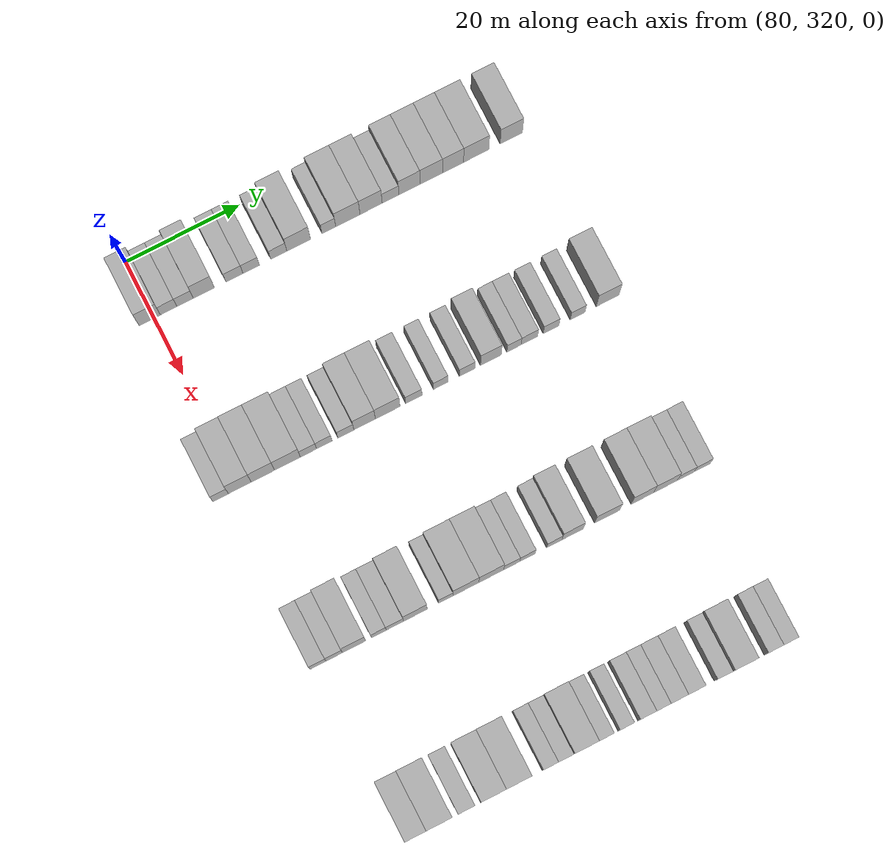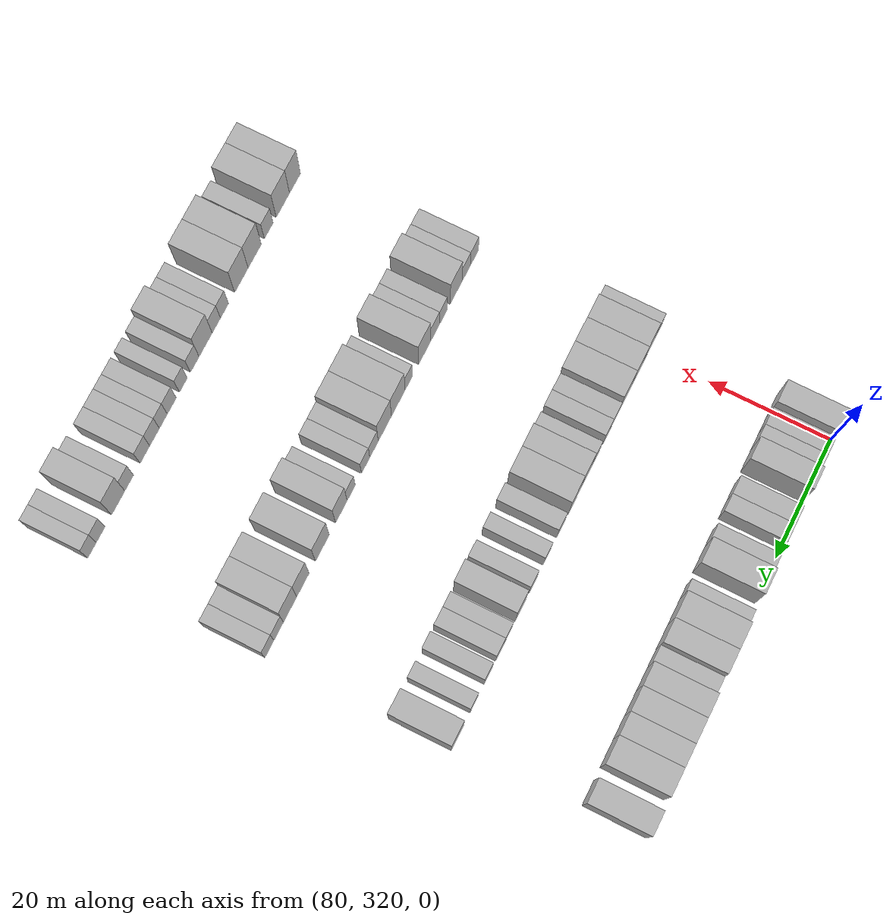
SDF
<sdf version="1.6">
 <world name="default">
  <model name="building_636">
   <static>1</static>
   <pose>85.0000 319.2625 0 0.000000 0.000000 0.000000</pose>
   <link name="link">
    <pose>0 0 4.50 0 0 0</pose>
    <collision name="collision"><geometry><box><size>10.0000 3.7058 9.0000</size></box></geometry></collision>
    <visual name="visual">
     <cast_shadows>0</cast_shadows>
     <geometry><box><size>10.0000 3.7058 9.0000</size></box></geometry>
     <material>
      <script>
       <uri>model://HANNAS_wall/materials/scripts</uri>
       <uri>model://HANNAS_wall/materials/textures</uri>
       <name>vrc/HANNAS_wall</name>
      </script>
     </material>
    </visual>
   </link>
  </model>
  <model name="building_637">
   <static>1</static>
   <pose>85.0000 322.5558 0 0.000000 0.000000 0.000000</pose>
   <link name="link">
    <pose>0 0 3.00 0 0 0</pose>
    <collision name="collision"><geometry><box><size>10.0000 2.8810 6.0000</size></box></geometry></collision>
    <visual name="visual">
     <cast_shadows>0</cast_shadows>
     <geometry><box><size>10.0000 2.8810 6.0000</size></box></geometry>
     <material>
      <script>
       <uri>model://HANNAS_wall/materials/scripts</uri>
       <uri>model://HANNAS_wall/materials/textures</uri>
       <name>vrc/HANNAS_wall</name>
      </script>
     </material>
    </visual>
   </link>
  </model>
  <model name="building_638">
   <static>1</static>
   <pose>85.0000 325.4326 0 0.000000 0.000000 0.000000</pose>
   <link name="link">
    <pose>0 0 3.00 0 0 0</pose>
    <collision name="collision"><geometry><box><size>10.0000 2.8725 6.0000</size></box></geometry></collision>
    <visual name="visual">
     <cast_shadows>0</cast_shadows>
     <geometry><box><size>10.0000 2.8725 6.0000</size></box></geometry>
     <material>
      <script>
       <uri>model://HANNAS_wall/materials/scripts</uri>
       <uri>model://HANNAS_wall/materials/textures</uri>
       <name>vrc/HANNAS_wall</name>
      </script>
     </material>
    </visual>
   </link>
  </model>
  <model name="building_639">
   <static>1</static>
   <pose>85.0000 328.7091 0 0.000000 0.000000 0.000000</pose>
   <link name="link">
    <pose>0 0 4.50 0 0 0</pose>
    <collision name="collision"><geometry><box><size>10.0000 3.6806 9.0000</size></box></geometry></collision>
    <visual name="visual">
     <cast_shadows>0</cast_shadows>
     <geometry><box><size>10.0000 3.6806 9.0000</size></box></geometry>
     <material>
      <script>
       <uri>model://HANNAS_wall/materials/scripts</uri>
       <uri>model://HANNAS_wall/materials/textures</uri>
       <name>vrc/HANNAS_wall</name>
      </script>
     </material>
    </visual>
   </link>
  </model>
  <model name="building_640">
   <static>1</static>
   <pose>85.0000 334.0440 0 0.000000 0.000000 0.000000</pose>
   <link name="link">
    <pose>0 0 3.00 0 0 0</pose>
    <collision name="collision"><geometry><box><size>10.0000 2.9892 6.0000</size></box></geometry></collision>
    <visual name="visual">
     <cast_shadows>0</cast_shadows>
     <geometry><box><size>10.0000 2.9892 6.0000</size></box></geometry>
     <material>
      <script>
       <uri>model://HANNAS_wall/materials/scripts</uri>
       <uri>model://HANNAS_wall/materials/textures</uri>
       <name>vrc/HANNAS_wall</name>
      </script>
     </material>
    </visual>
   </link>
  </model>
  <model name="building_641">
   <static>1</static>
   <pose>85.0000 336.9757 0 0.000000 0.000000 0.000000</pose>
   <link name="link">
    <pose>0 0 3.00 0 0 0</pose>
    <collision name="collision"><geometry><box><size>10.0000 2.8741 6.0000</size></box></geometry></collision>
    <visual name="visual">
     <cast_shadows>0</cast_shadows>
     <geometry><box><size>10.0000 2.8741 6.0000</size></box></geometry>
     <material>
      <script>
       <uri>model://HANNAS_wall/materials/scripts</uri>
       <uri>model://HANNAS_wall/materials/textures</uri>
       <name>vrc/HANNAS_wall</name>
      </script>
     </material>
    </visual>
   </link>
  </model>
  <model name="building_642">
   <static>1</static>
   <pose>85.0000 341.8281 0 0.000000 0.000000 0.000000</pose>
   <link name="link">
    <pose>0 0 3.00 0 0 0</pose>
    <collision name="collision"><geometry><box><size>10.0000 2.8306 6.0000</size></box></geometry></collision>
    <visual name="visual">
     <cast_shadows>0</cast_shadows>
     <geometry><box><size>10.0000 2.8306 6.0000</size></box></geometry>
     <material>
      <script>
       <uri>model://HANNAS_wall/materials/scripts</uri>
       <uri>model://HANNAS_wall/materials/textures</uri>
       <name>vrc/HANNAS_wall</name>
      </script>
     </material>
    </visual>
   </link>
  </model>
  <model name="building_643">
   <static>1</static>
   <pose>85.0000 345.3200 0 0.000000 0.000000 0.000000</pose>
   <link name="link">
    <pose>0 0 4.50 0 0 0</pose>
    <collision name="collision"><geometry><box><size>10.0000 4.1533 9.0000</size></box></geometry></collision>
    <visual name="visual">
     <cast_shadows>0</cast_shadows>
     <geometry><box><size>10.0000 4.1533 9.0000</size></box></geometry>
     <material>
      <script>
       <uri>model://HANNAS_wall/materials/scripts</uri>
       <uri>model://HANNAS_wall/materials/textures</uri>
       <name>vrc/HANNAS_wall</name>
      </script>
     </material>
    </visual>
   </link>
  </model>
  <model name="building_644">
   <static>1</static>
   <pose>85.0000 350.6102 0 0.000000 0.000000 0.000000</pose>
   <link name="link">
    <pose>0 0 3.00 0 0 0</pose>
    <collision name="collision"><geometry><box><size>10.0000 2.4271 6.0000</size></box></geometry></collision>
    <visual name="visual">
     <cast_shadows>0</cast_shadows>
     <geometry><box><size>10.0000 2.4271 6.0000</size></box></geometry>
     <material>
      <script>
       <uri>model://HANNAS_wall/materials/scripts</uri>
       <uri>model://HANNAS_wall/materials/textures</uri>
       <name>vrc/HANNAS_wall</name>
      </script>
     </material>
    </visual>
   </link>
  </model>
  <model name="building_645">
   <static>1</static>
   <pose>85.0000 353.9588 0 0.000000 0.000000 0.000000</pose>
   <link name="link">
    <pose>0 0 4.50 0 0 0</pose>
    <collision name="collision"><geometry><box><size>10.0000 4.2700 9.0000</size></box></geometry></collision>
    <visual name="visual">
     <cast_shadows>0</cast_shadows>
     <geometry><box><size>10.0000 4.2700 9.0000</size></box></geometry>
     <material>
      <script>
       <uri>model://HANNAS_wall/materials/scripts</uri>
       <uri>model://HANNAS_wall/materials/textures</uri>
       <name>vrc/HANNAS_wall</name>
      </script>
     </material>
    </visual>
   </link>
  </model>
  <model name="building_646">
   <static>1</static>
   <pose>85.0000 358.0466 0 0.000000 0.000000 0.000000</pose>
   <link name="link">
    <pose>0 0 4.50 0 0 0</pose>
    <collision name="collision"><geometry><box><size>10.0000 3.9058 9.0000</size></box></geometry></collision>
    <visual name="visual">
     <cast_shadows>0</cast_shadows>
     <geometry><box><size>10.0000 3.9058 9.0000</size></box></geometry>
     <material>
      <script>
       <uri>model://HANNAS_wall/materials/scripts</uri>
       <uri>model://HANNAS_wall/materials/textures</uri>
       <name>vrc/HANNAS_wall</name>
      </script>
     </material>
    </visual>
   </link>
  </model>
  <model name="building_647">
   <static>1</static>
   <pose>85.0000 361.4783 0 0.000000 0.000000 0.000000</pose>
   <link name="link">
    <pose>0 0 3.00 0 0 0</pose>
    <collision name="collision"><geometry><box><size>10.0000 2.9574 6.0000</size></box></geometry></collision>
    <visual name="visual">
     <cast_shadows>0</cast_shadows>
     <geometry><box><size>10.0000 2.9574 6.0000</size></box></geometry>
     <material>
      <script>
       <uri>model://HANNAS_wall/materials/scripts</uri>
       <uri>model://HANNAS_wall/materials/textures</uri>
       <name>vrc/HANNAS_wall</name>
      </script>
     </material>
    </visual>
   </link>
  </model>
  <model name="building_648">
   <static>1</static>
   <pose>85.0000 364.8378 0 0.000000 0.000000 0.000000</pose>
   <link name="link">
    <pose>0 0 4.50 0 0 0</pose>
    <collision name="collision"><geometry><box><size>10.0000 3.7616 9.0000</size></box></geometry></collision>
    <visual name="visual">
     <cast_shadows>0</cast_shadows>
     <geometry><box><size>10.0000 3.7616 9.0000</size></box></geometry>
     <material>
      <script>
       <uri>model://HANNAS_wall/materials/scripts</uri>
       <uri>model://HANNAS_wall/materials/textures</uri>
       <name>vrc/HANNAS_wall</name>
      </script>
     </material>
    </visual>
   </link>
  </model>
  <model name="building_649">
   <static>1</static>
   <pose>85.0000 368.7100 0 0.000000 0.000000 0.000000</pose>
   <link name="link">
    <pose>0 0 4.50 0 0 0</pose>
    <collision name="collision"><geometry><box><size>10.0000 3.9829 9.0000</size></box></geometry></collision>
    <visual name="visual">
     <cast_shadows>0</cast_shadows>
     <geometry><box><size>10.0000 3.9829 9.0000</size></box></geometry>
     <material>
      <script>
       <uri>model://HANNAS_wall/materials/scripts</uri>
       <uri>model://HANNAS_wall/materials/textures</uri>
       <name>vrc/HANNAS_wall</name>
      </script>
     </material>
    </visual>
   </link>
  </model>
  <model name="building_650">
   <static>1</static>
   <pose>85.0000 372.5409 0 0.000000 0.000000 0.000000</pose>
   <link name="link">
    <pose>0 0 4.50 0 0 0</pose>
    <collision name="collision"><geometry><box><size>10.0000 3.6788 9.0000</size></box></geometry></collision>
    <visual name="visual">
     <cast_shadows>0</cast_shadows>
     <geometry><box><size>10.0000 3.6788 9.0000</size></box></geometry>
     <material>
      <script>
       <uri>model://HANNAS_wall/materials/scripts</uri>
       <uri>model://HANNAS_wall/materials/textures</uri>
       <name>vrc/HANNAS_wall</name>
      </script>
     </material>
    </visual>
   </link>
  </model>
  <model name="building_651">
   <static>1</static>
   <pose>85.0000 376.6159 0 0.000000 0.000000 0.000000</pose>
   <link name="link">
    <pose>0 0 4.50 0 0 0</pose>
    <collision name="collision"><geometry><box><size>10.0000 4.4713 9.0000</size></box></geometry></collision>
    <visual name="visual">
     <cast_shadows>0</cast_shadows>
     <geometry><box><size>10.0000 4.4713 9.0000</size></box></geometry>
     <material>
      <script>
       <uri>model://HANNAS_wall/materials/scripts</uri>
       <uri>model://HANNAS_wall/materials/textures</uri>
       <name>vrc/HANNAS_wall</name>
      </script>
     </material>
    </visual>
   </link>
  </model>
  <model name="building_652">
   <static>1</static>
   <pose>85.0000 382.8207 0 0.000000 0.000000 0.000000</pose>
   <link name="link">
    <pose>0 0 4.50 0 0 0</pose>
    <collision name="collision"><geometry><box><size>10.0000 3.9382 9.0000</size></box></geometry></collision>
    <visual name="visual">
     <cast_shadows>0</cast_shadows>
     <geometry><box><size>10.0000 3.9382 9.0000</size></box></geometry>
     <material>
      <script>
       <uri>model://HANNAS_wall/materials/scripts</uri>
       <uri>model://HANNAS_wall/materials/textures</uri>
       <name>vrc/HANNAS_wall</name>
      </script>
     </material>
    </visual>
   </link>
  </model>
  <model name="building_861">
   <static>1</static>
   <pose>115.0000 316.6070 0 0.000000 0.000000 0.000000</pose>
   <link name="link">
    <pose>0 0 3.00 0 0 0</pose>
    <collision name="collision"><geometry><box><size>10.0000 2.6922 6.0000</size></box></geometry></collision>
    <visual name="visual">
     <cast_shadows>0</cast_shadows>
     <geometry><box><size>10.0000 2.6922 6.0000</size></box></geometry>
     <material>
      <script>
       <uri>model://HANNAS_wall/materials/scripts</uri>
       <uri>model://HANNAS_wall/materials/textures</uri>
       <name>vrc/HANNAS_wall</name>
      </script>
     </material>
    </visual>
   </link>
  </model>
  <model name="building_862">
   <static>1</static>
   <pose>115.0000 319.9297 0 0.000000 0.000000 0.000000</pose>
   <link name="link">
    <pose>0 0 4.50 0 0 0</pose>
    <collision name="collision"><geometry><box><size>10.0000 3.9531 9.0000</size></box></geometry></collision>
    <visual name="visual">
     <cast_shadows>0</cast_shadows>
     <geometry><box><size>10.0000 3.9531 9.0000</size></box></geometry>
     <material>
      <script>
       <uri>model://HANNAS_wall/materials/scripts</uri>
       <uri>model://HANNAS_wall/materials/textures</uri>
       <name>vrc/HANNAS_wall</name>
      </script>
     </material>
    </visual>
   </link>
  </model>
  <model name="building_863">
   <static>1</static>
   <pose>115.0000 323.9288 0 0.000000 0.000000 0.000000</pose>
   <link name="link">
    <pose>0 0 4.50 0 0 0</pose>
    <collision name="collision"><geometry><box><size>10.0000 4.0452 9.0000</size></box></geometry></collision>
    <visual name="visual">
     <cast_shadows>0</cast_shadows>
     <geometry><box><size>10.0000 4.0452 9.0000</size></box></geometry>
     <material>
      <script>
       <uri>model://HANNAS_wall/materials/scripts</uri>
       <uri>model://HANNAS_wall/materials/textures</uri>
       <name>vrc/HANNAS_wall</name>
      </script>
     </material>
    </visual>
   </link>
  </model>
  <model name="building_864">
   <static>1</static>
   <pose>115.0000 328.1894 0 0.000000 0.000000 0.000000</pose>
   <link name="link">
    <pose>0 0 4.50 0 0 0</pose>
    <collision name="collision"><geometry><box><size>10.0000 4.4760 9.0000</size></box></geometry></collision>
    <visual name="visual">
     <cast_shadows>0</cast_shadows>
     <geometry><box><size>10.0000 4.4760 9.0000</size></box></geometry>
     <material>
      <script>
       <uri>model://HANNAS_wall/materials/scripts</uri>
       <uri>model://HANNAS_wall/materials/textures</uri>
       <name>vrc/HANNAS_wall</name>
      </script>
     </material>
    </visual>
   </link>
  </model>
  <model name="building_865">
   <static>1</static>
   <pose>115.0000 331.8304 0 0.000000 0.000000 0.000000</pose>
   <link name="link">
    <pose>0 0 3.00 0 0 0</pose>
    <collision name="collision"><geometry><box><size>10.0000 2.8059 6.0000</size></box></geometry></collision>
    <visual name="visual">
     <cast_shadows>0</cast_shadows>
     <geometry><box><size>10.0000 2.8059 6.0000</size></box></geometry>
     <material>
      <script>
       <uri>model://HANNAS_wall/materials/scripts</uri>
       <uri>model://HANNAS_wall/materials/textures</uri>
       <name>vrc/HANNAS_wall</name>
      </script>
     </material>
    </visual>
   </link>
  </model>
  <model name="building_866">
   <static>1</static>
   <pose>115.0000 334.5945 0 0.000000 0.000000 0.000000</pose>
   <link name="link">
    <pose>0 0 3.00 0 0 0</pose>
    <collision name="collision"><geometry><box><size>10.0000 2.7223 6.0000</size></box></geometry></collision>
    <visual name="visual">
     <cast_shadows>0</cast_shadows>
     <geometry><box><size>10.0000 2.7223 6.0000</size></box></geometry>
     <material>
      <script>
       <uri>model://HANNAS_wall/materials/scripts</uri>
       <uri>model://HANNAS_wall/materials/textures</uri>
       <name>vrc/HANNAS_wall</name>
      </script>
     </material>
    </visual>
   </link>
  </model>
  <model name="building_867">
   <static>1</static>
   <pose>115.0000 338.3423 0 0.000000 0.000000 0.000000</pose>
   <link name="link">
    <pose>0 0 3.00 0 0 0</pose>
    <collision name="collision"><geometry><box><size>10.0000 2.7733 6.0000</size></box></geometry></collision>
    <visual name="visual">
     <cast_shadows>0</cast_shadows>
     <geometry><box><size>10.0000 2.7733 6.0000</size></box></geometry>
     <material>
      <script>
       <uri>model://HANNAS_wall/materials/scripts</uri>
       <uri>model://HANNAS_wall/materials/textures</uri>
       <name>vrc/HANNAS_wall</name>
      </script>
     </material>
    </visual>
   </link>
  </model>
  <model name="building_868">
   <static>1</static>
   <pose>115.0000 341.6054 0 0.000000 0.000000 0.000000</pose>
   <link name="link">
    <pose>0 0 4.50 0 0 0</pose>
    <collision name="collision"><geometry><box><size>10.0000 3.7530 9.0000</size></box></geometry></collision>
    <visual name="visual">
     <cast_shadows>0</cast_shadows>
     <geometry><box><size>10.0000 3.7530 9.0000</size></box></geometry>
     <material>
      <script>
       <uri>model://HANNAS_wall/materials/scripts</uri>
       <uri>model://HANNAS_wall/materials/textures</uri>
       <name>vrc/HANNAS_wall</name>
      </script>
     </material>
    </visual>
   </link>
  </model>
  <model name="building_869">
   <static>1</static>
   <pose>115.0000 345.6247 0 0.000000 0.000000 0.000000</pose>
   <link name="link">
    <pose>0 0 4.50 0 0 0</pose>
    <collision name="collision"><geometry><box><size>10.0000 4.2855 9.0000</size></box></geometry></collision>
    <visual name="visual">
     <cast_shadows>0</cast_shadows>
     <geometry><box><size>10.0000 4.2855 9.0000</size></box></geometry>
     <material>
      <script>
       <uri>model://HANNAS_wall/materials/scripts</uri>
       <uri>model://HANNAS_wall/materials/textures</uri>
       <name>vrc/HANNAS_wall</name>
      </script>
     </material>
    </visual>
   </link>
  </model>
  <model name="building_870">
   <static>1</static>
   <pose>115.0000 350.1934 0 0.000000 0.000000 0.000000</pose>
   <link name="link">
    <pose>0 0 3.00 0 0 0</pose>
    <collision name="collision"><geometry><box><size>10.0000 2.8519 6.0000</size></box></geometry></collision>
    <visual name="visual">
     <cast_shadows>0</cast_shadows>
     <geometry><box><size>10.0000 2.8519 6.0000</size></box></geometry>
     <material>
      <script>
       <uri>model://HANNAS_wall/materials/scripts</uri>
       <uri>model://HANNAS_wall/materials/textures</uri>
       <name>vrc/HANNAS_wall</name>
      </script>
     </material>
    </visual>
   </link>
  </model>
  <model name="building_871">
   <static>1</static>
   <pose>115.0000 354.8869 0 0.000000 0.000000 0.000000</pose>
   <link name="link">
    <pose>0 0 3.00 0 0 0</pose>
    <collision name="collision"><geometry><box><size>10.0000 2.5351 6.0000</size></box></geometry></collision>
    <visual name="visual">
     <cast_shadows>0</cast_shadows>
     <geometry><box><size>10.0000 2.5351 6.0000</size></box></geometry>
     <material>
      <script>
       <uri>model://HANNAS_wall/materials/scripts</uri>
       <uri>model://HANNAS_wall/materials/textures</uri>
       <name>vrc/HANNAS_wall</name>
      </script>
     </material>
    </visual>
   </link>
  </model>
  <model name="building_872">
   <static>1</static>
   <pose>115.0000 359.5043 0 0.000000 0.000000 0.000000</pose>
   <link name="link">
    <pose>0 0 3.00 0 0 0</pose>
    <collision name="collision"><geometry><box><size>10.0000 2.6997 6.0000</size></box></geometry></collision>
    <visual name="visual">
     <cast_shadows>0</cast_shadows>
     <geometry><box><size>10.0000 2.6997 6.0000</size></box></geometry>
     <material>
      <script>
       <uri>model://HANNAS_wall/materials/scripts</uri>
       <uri>model://HANNAS_wall/materials/textures</uri>
       <name>vrc/HANNAS_wall</name>
      </script>
     </material>
    </visual>
   </link>
  </model>
  <model name="building_873">
   <static>1</static>
   <pose>115.0000 363.6675 0 0.000000 0.000000 0.000000</pose>
   <link name="link">
    <pose>0 0 4.50 0 0 0</pose>
    <collision name="collision"><geometry><box><size>10.0000 3.6268 9.0000</size></box></geometry></collision>
    <visual name="visual">
     <cast_shadows>0</cast_shadows>
     <geometry><box><size>10.0000 3.6268 9.0000</size></box></geometry>
     <material>
      <script>
       <uri>model://HANNAS_wall/materials/scripts</uri>
       <uri>model://HANNAS_wall/materials/textures</uri>
       <name>vrc/HANNAS_wall</name>
      </script>
     </material>
    </visual>
   </link>
  </model>
  <model name="building_874">
   <static>1</static>
   <pose>115.0000 367.7287 0 0.000000 0.000000 0.000000</pose>
   <link name="link">
    <pose>0 0 3.00 0 0 0</pose>
    <collision name="collision"><geometry><box><size>10.0000 2.4957 6.0000</size></box></geometry></collision>
    <visual name="visual">
     <cast_shadows>0</cast_shadows>
     <geometry><box><size>10.0000 2.4957 6.0000</size></box></geometry>
     <material>
      <script>
       <uri>model://HANNAS_wall/materials/scripts</uri>
       <uri>model://HANNAS_wall/materials/textures</uri>
       <name>vrc/HANNAS_wall</name>
      </script>
     </material>
    </visual>
   </link>
  </model>
  <model name="building_875">
   <static>1</static>
   <pose>115.0000 370.4249 0 0.000000 0.000000 0.000000</pose>
   <link name="link">
    <pose>0 0 3.00 0 0 0</pose>
    <collision name="collision"><geometry><box><size>10.0000 2.8967 6.0000</size></box></geometry></collision>
    <visual name="visual">
     <cast_shadows>0</cast_shadows>
     <geometry><box><size>10.0000 2.8967 6.0000</size></box></geometry>
     <material>
      <script>
       <uri>model://HANNAS_wall/materials/scripts</uri>
       <uri>model://HANNAS_wall/materials/textures</uri>
       <name>vrc/HANNAS_wall</name>
      </script>
     </material>
    </visual>
   </link>
  </model>
  <model name="building_876">
   <static>1</static>
   <pose>115.0000 374.2405 0 0.000000 0.000000 0.000000</pose>
   <link name="link">
    <pose>0 0 3.00 0 0 0</pose>
    <collision name="collision"><geometry><box><size>10.0000 2.7345 6.0000</size></box></geometry></collision>
    <visual name="visual">
     <cast_shadows>0</cast_shadows>
     <geometry><box><size>10.0000 2.7345 6.0000</size></box></geometry>
     <material>
      <script>
       <uri>model://HANNAS_wall/materials/scripts</uri>
       <uri>model://HANNAS_wall/materials/textures</uri>
       <name>vrc/HANNAS_wall</name>
      </script>
     </material>
    </visual>
   </link>
  </model>
  <model name="building_877">
   <static>1</static>
   <pose>115.0000 378.9052 0 0.000000 0.000000 0.000000</pose>
   <link name="link">
    <pose>0 0 3.00 0 0 0</pose>
    <collision name="collision"><geometry><box><size>10.0000 2.5949 6.0000</size></box></geometry></collision>
    <visual name="visual">
     <cast_shadows>0</cast_shadows>
     <geometry><box><size>10.0000 2.5949 6.0000</size></box></geometry>
     <material>
      <script>
       <uri>model://HANNAS_wall/materials/scripts</uri>
       <uri>model://HANNAS_wall/materials/textures</uri>
       <name>vrc/HANNAS_wall</name>
      </script>
     </material>
    </visual>
   </link>
  </model>
  <model name="building_878">
   <static>1</static>
   <pose>115.0000 384.2027 0 0.000000 0.000000 0.000000</pose>
   <link name="link">
    <pose>0 0 4.50 0 0 0</pose>
    <collision name="collision"><geometry><box><size>10.0000 4.0001 9.0000</size></box></geometry></collision>
    <visual name="visual">
     <cast_shadows>0</cast_shadows>
     <geometry><box><size>10.0000 4.0001 9.0000</size></box></geometry>
     <material>
      <script>
       <uri>model://HANNAS_wall/materials/scripts</uri>
       <uri>model://HANNAS_wall/materials/textures</uri>
       <name>vrc/HANNAS_wall</name>
      </script>
     </material>
    </visual>
   </link>
  </model>
  <model name="building_1096">
   <static>1</static>
   <pose>145.0000 318.2930 0 0.000000 0.000000 0.000000</pose>
   <link name="link">
    <pose>0 0 3.00 0 0 0</pose>
    <collision name="collision"><geometry><box><size>10.0000 2.7541 6.0000</size></box></geometry></collision>
    <visual name="visual">
     <cast_shadows>0</cast_shadows>
     <geometry><box><size>10.0000 2.7541 6.0000</size></box></geometry>
     <material>
      <script>
       <uri>model://HANNAS_wall/materials/scripts</uri>
       <uri>model://HANNAS_wall/materials/textures</uri>
       <name>vrc/HANNAS_wall</name>
      </script>
     </material>
    </visual>
   </link>
  </model>
  <model name="building_1097">
   <static>1</static>
   <pose>145.0000 321.0886 0 0.000000 0.000000 0.000000</pose>
   <link name="link">
    <pose>0 0 3.00 0 0 0</pose>
    <collision name="collision"><geometry><box><size>10.0000 2.8372 6.0000</size></box></geometry></collision>
    <visual name="visual">
     <cast_shadows>0</cast_shadows>
     <geometry><box><size>10.0000 2.8372 6.0000</size></box></geometry>
     <material>
      <script>
       <uri>model://HANNAS_wall/materials/scripts</uri>
       <uri>model://HANNAS_wall/materials/textures</uri>
       <name>vrc/HANNAS_wall</name>
      </script>
     </material>
    </visual>
   </link>
  </model>
  <model name="building_1098">
   <static>1</static>
   <pose>145.0000 324.4993 0 0.000000 0.000000 0.000000</pose>
   <link name="link">
    <pose>0 0 4.50 0 0 0</pose>
    <collision name="collision"><geometry><box><size>10.0000 3.9843 9.0000</size></box></geometry></collision>
    <visual name="visual">
     <cast_shadows>0</cast_shadows>
     <geometry><box><size>10.0000 3.9843 9.0000</size></box></geometry>
     <material>
      <script>
       <uri>model://HANNAS_wall/materials/scripts</uri>
       <uri>model://HANNAS_wall/materials/textures</uri>
       <name>vrc/HANNAS_wall</name>
      </script>
     </material>
    </visual>
   </link>
  </model>
  <model name="building_1099">
   <static>1</static>
   <pose>145.0000 328.7684 0 0.000000 0.000000 0.000000</pose>
   <link name="link">
    <pose>0 0 3.00 0 0 0</pose>
    <collision name="collision"><geometry><box><size>10.0000 2.5539 6.0000</size></box></geometry></collision>
    <visual name="visual">
     <cast_shadows>0</cast_shadows>
     <geometry><box><size>10.0000 2.5539 6.0000</size></box></geometry>
     <material>
      <script>
       <uri>model://HANNAS_wall/materials/scripts</uri>
       <uri>model://HANNAS_wall/materials/textures</uri>
       <name>vrc/HANNAS_wall</name>
      </script>
     </material>
    </visual>
   </link>
  </model>
  <model name="building_1100">
   <static>1</static>
   <pose>145.0000 331.5217 0 0.000000 0.000000 0.000000</pose>
   <link name="link">
    <pose>0 0 3.00 0 0 0</pose>
    <collision name="collision"><geometry><box><size>10.0000 2.9525 6.0000</size></box></geometry></collision>
    <visual name="visual">
     <cast_shadows>0</cast_shadows>
     <geometry><box><size>10.0000 2.9525 6.0000</size></box></geometry>
     <material>
      <script>
       <uri>model://HANNAS_wall/materials/scripts</uri>
       <uri>model://HANNAS_wall/materials/textures</uri>
       <name>vrc/HANNAS_wall</name>
      </script>
     </material>
    </visual>
   </link>
  </model>
  <model name="building_1101">
   <static>1</static>
   <pose>145.0000 335.0516 0 0.000000 0.000000 0.000000</pose>
   <link name="link">
    <pose>0 0 4.50 0 0 0</pose>
    <collision name="collision"><geometry><box><size>10.0000 4.1074 9.0000</size></box></geometry></collision>
    <visual name="visual">
     <cast_shadows>0</cast_shadows>
     <geometry><box><size>10.0000 4.1074 9.0000</size></box></geometry>
     <material>
      <script>
       <uri>model://HANNAS_wall/materials/scripts</uri>
       <uri>model://HANNAS_wall/materials/textures</uri>
       <name>vrc/HANNAS_wall</name>
      </script>
     </material>
    </visual>
   </link>
  </model>
  <model name="building_1102">
   <static>1</static>
   <pose>145.0000 340.3355 0 0.000000 0.000000 0.000000</pose>
   <link name="link">
    <pose>0 0 3.00 0 0 0</pose>
    <collision name="collision"><geometry><box><size>10.0000 2.4604 6.0000</size></box></geometry></collision>
    <visual name="visual">
     <cast_shadows>0</cast_shadows>
     <geometry><box><size>10.0000 2.4604 6.0000</size></box></geometry>
     <material>
      <script>
       <uri>model://HANNAS_wall/materials/scripts</uri>
       <uri>model://HANNAS_wall/materials/textures</uri>
       <name>vrc/HANNAS_wall</name>
      </script>
     </material>
    </visual>
   </link>
  </model>
  <model name="building_1103">
   <static>1</static>
   <pose>145.0000 343.8103 0 0.000000 0.000000 0.000000</pose>
   <link name="link">
    <pose>0 0 4.50 0 0 0</pose>
    <collision name="collision"><geometry><box><size>10.0000 4.4892 9.0000</size></box></geometry></collision>
    <visual name="visual">
     <cast_shadows>0</cast_shadows>
     <geometry><box><size>10.0000 4.4892 9.0000</size></box></geometry>
     <material>
      <script>
       <uri>model://HANNAS_wall/materials/scripts</uri>
       <uri>model://HANNAS_wall/materials/textures</uri>
       <name>vrc/HANNAS_wall</name>
      </script>
     </material>
    </visual>
   </link>
  </model>
  <model name="building_1104">
   <static>1</static>
   <pose>145.0000 348.2109 0 0.000000 0.000000 0.000000</pose>
   <link name="link">
    <pose>0 0 4.50 0 0 0</pose>
    <collision name="collision"><geometry><box><size>10.0000 4.3118 9.0000</size></box></geometry></collision>
    <visual name="visual">
     <cast_shadows>0</cast_shadows>
     <geometry><box><size>10.0000 4.3118 9.0000</size></box></geometry>
     <material>
      <script>
       <uri>model://HANNAS_wall/materials/scripts</uri>
       <uri>model://HANNAS_wall/materials/textures</uri>
       <name>vrc/HANNAS_wall</name>
      </script>
     </material>
    </visual>
   </link>
  </model>
  <model name="building_1105">
   <static>1</static>
   <pose>145.0000 351.7563 0 0.000000 0.000000 0.000000</pose>
   <link name="link">
    <pose>0 0 3.00 0 0 0</pose>
    <collision name="collision"><geometry><box><size>10.0000 2.7791 6.0000</size></box></geometry></collision>
    <visual name="visual">
     <cast_shadows>0</cast_shadows>
     <geometry><box><size>10.0000 2.7791 6.0000</size></box></geometry>
     <material>
      <script>
       <uri>model://HANNAS_wall/materials/scripts</uri>
       <uri>model://HANNAS_wall/materials/textures</uri>
       <name>vrc/HANNAS_wall</name>
      </script>
     </material>
    </visual>
   </link>
  </model>
  <model name="building_1106">
   <static>1</static>
   <pose>145.0000 354.4895 0 0.000000 0.000000 0.000000</pose>
   <link name="link">
    <pose>0 0 3.00 0 0 0</pose>
    <collision name="collision"><geometry><box><size>10.0000 2.6873 6.0000</size></box></geometry></collision>
    <visual name="visual">
     <cast_shadows>0</cast_shadows>
     <geometry><box><size>10.0000 2.6873 6.0000</size></box></geometry>
     <material>
      <script>
       <uri>model://HANNAS_wall/materials/scripts</uri>
       <uri>model://HANNAS_wall/materials/textures</uri>
       <name>vrc/HANNAS_wall</name>
      </script>
     </material>
    </visual>
   </link>
  </model>
  <model name="building_1107">
   <static>1</static>
   <pose>145.0000 359.1466 0 0.000000 0.000000 0.000000</pose>
   <link name="link">
    <pose>0 0 3.00 0 0 0</pose>
    <collision name="collision"><geometry><box><size>10.0000 2.6268 6.0000</size></box></geometry></collision>
    <visual name="visual">
     <cast_shadows>0</cast_shadows>
     <geometry><box><size>10.0000 2.6268 6.0000</size></box></geometry>
     <material>
      <script>
       <uri>model://HANNAS_wall/materials/scripts</uri>
       <uri>model://HANNAS_wall/materials/textures</uri>
       <name>vrc/HANNAS_wall</name>
      </script>
     </material>
    </visual>
   </link>
  </model>
  <model name="building_1108">
   <static>1</static>
   <pose>145.0000 362.3119 0 0.000000 0.000000 0.000000</pose>
   <link name="link">
    <pose>0 0 4.50 0 0 0</pose>
    <collision name="collision"><geometry><box><size>10.0000 3.7039 9.0000</size></box></geometry></collision>
    <visual name="visual">
     <cast_shadows>0</cast_shadows>
     <geometry><box><size>10.0000 3.7039 9.0000</size></box></geometry>
     <material>
      <script>
       <uri>model://HANNAS_wall/materials/scripts</uri>
       <uri>model://HANNAS_wall/materials/textures</uri>
       <name>vrc/HANNAS_wall</name>
      </script>
     </material>
    </visual>
   </link>
  </model>
  <model name="building_1109">
   <static>1</static>
   <pose>145.0000 368.3526 0 0.000000 0.000000 0.000000</pose>
   <link name="link">
    <pose>0 0 4.50 0 0 0</pose>
    <collision name="collision"><geometry><box><size>10.0000 4.3775 9.0000</size></box></geometry></collision>
    <visual name="visual">
     <cast_shadows>0</cast_shadows>
     <geometry><box><size>10.0000 4.3775 9.0000</size></box></geometry>
     <material>
      <script>
       <uri>model://HANNAS_wall/materials/scripts</uri>
       <uri>model://HANNAS_wall/materials/textures</uri>
       <name>vrc/HANNAS_wall</name>
      </script>
     </material>
    </visual>
   </link>
  </model>
  <model name="building_1110">
   <static>1</static>
   <pose>145.0000 374.4978 0 0.000000 0.000000 0.000000</pose>
   <link name="link">
    <pose>0 0 4.50 0 0 0</pose>
    <collision name="collision"><geometry><box><size>10.0000 3.9127 9.0000</size></box></geometry></collision>
    <visual name="visual">
     <cast_shadows>0</cast_shadows>
     <geometry><box><size>10.0000 3.9127 9.0000</size></box></geometry>
     <material>
      <script>
       <uri>model://HANNAS_wall/materials/scripts</uri>
       <uri>model://HANNAS_wall/materials/textures</uri>
       <name>vrc/HANNAS_wall</name>
      </script>
     </material>
    </visual>
   </link>
  </model>
  <model name="building_1111">
   <static>1</static>
   <pose>145.0000 378.5279 0 0.000000 0.000000 0.000000</pose>
   <link name="link">
    <pose>0 0 4.50 0 0 0</pose>
    <collision name="collision"><geometry><box><size>10.0000 4.1476 9.0000</size></box></geometry></collision>
    <visual name="visual">
     <cast_shadows>0</cast_shadows>
     <geometry><box><size>10.0000 4.1476 9.0000</size></box></geometry>
     <material>
      <script>
       <uri>model://HANNAS_wall/materials/scripts</uri>
       <uri>model://HANNAS_wall/materials/textures</uri>
       <name>vrc/HANNAS_wall</name>
      </script>
     </material>
    </visual>
   </link>
  </model>
  <model name="building_1112">
   <static>1</static>
   <pose>145.0000 382.0901 0 0.000000 0.000000 0.000000</pose>
   <link name="link">
    <pose>0 0 3.00 0 0 0</pose>
    <collision name="collision"><geometry><box><size>10.0000 2.9768 6.0000</size></box></geometry></collision>
    <visual name="visual">
     <cast_shadows>0</cast_shadows>
     <geometry><box><size>10.0000 2.9768 6.0000</size></box></geometry>
     <material>
      <script>
       <uri>model://HANNAS_wall/materials/scripts</uri>
       <uri>model://HANNAS_wall/materials/textures</uri>
       <name>vrc/HANNAS_wall</name>
      </script>
     </material>
    </visual>
   </link>
  </model>
  <model name="building_1113">
   <static>1</static>
   <pose>145.0000 384.9736 0 0.000000 0.000000 0.000000</pose>
   <link name="link">
    <pose>0 0 3.00 0 0 0</pose>
    <collision name="collision"><geometry><box><size>10.0000 2.7901 6.0000</size></box></geometry></collision>
    <visual name="visual">
     <cast_shadows>0</cast_shadows>
     <geometry><box><size>10.0000 2.7901 6.0000</size></box></geometry>
     <material>
      <script>
       <uri>model://HANNAS_wall/materials/scripts</uri>
       <uri>model://HANNAS_wall/materials/textures</uri>
       <name>vrc/HANNAS_wall</name>
      </script>
     </material>
    </visual>
   </link>
  </model>
  <model name="building_1325">
   <static>1</static>
   <pose>175.0000 319.7922 0 0.000000 0.000000 0.000000</pose>
   <link name="link">
    <pose>0 0 4.50 0 0 0</pose>
    <collision name="collision"><geometry><box><size>10.0000 3.6180 9.0000</size></box></geometry></collision>
    <visual name="visual">
     <cast_shadows>0</cast_shadows>
     <geometry><box><size>10.0000 3.6180 9.0000</size></box></geometry>
     <material>
      <script>
       <uri>model://HANNAS_wall/materials/scripts</uri>
       <uri>model://HANNAS_wall/materials/textures</uri>
       <name>vrc/HANNAS_wall</name>
      </script>
     </material>
    </visual>
   </link>
  </model>
  <model name="building_1326">
   <static>1</static>
   <pose>175.0000 323.7875 0 0.000000 0.000000 0.000000</pose>
   <link name="link">
    <pose>0 0 4.50 0 0 0</pose>
    <collision name="collision"><geometry><box><size>10.0000 4.3726 9.0000</size></box></geometry></collision>
    <visual name="visual">
     <cast_shadows>0</cast_shadows>
     <geometry><box><size>10.0000 4.3726 9.0000</size></box></geometry>
     <material>
      <script>
       <uri>model://HANNAS_wall/materials/scripts</uri>
       <uri>model://HANNAS_wall/materials/textures</uri>
       <name>vrc/HANNAS_wall</name>
      </script>
     </material>
    </visual>
   </link>
  </model>
  <model name="building_1327">
   <static>1</static>
   <pose>175.0000 328.4044 0 0.000000 0.000000 0.000000</pose>
   <link name="link">
    <pose>0 0 3.00 0 0 0</pose>
    <collision name="collision"><geometry><box><size>10.0000 2.8611 6.0000</size></box></geometry></collision>
    <visual name="visual">
     <cast_shadows>0</cast_shadows>
     <geometry><box><size>10.0000 2.8611 6.0000</size></box></geometry>
     <material>
      <script>
       <uri>model://HANNAS_wall/materials/scripts</uri>
       <uri>model://HANNAS_wall/materials/textures</uri>
       <name>vrc/HANNAS_wall</name>
      </script>
     </material>
    </visual>
   </link>
  </model>
  <model name="building_1328">
   <static>1</static>
   <pose>175.0000 332.9699 0 0.000000 0.000000 0.000000</pose>
   <link name="link">
    <pose>0 0 4.50 0 0 0</pose>
    <collision name="collision"><geometry><box><size>10.0000 4.2699 9.0000</size></box></geometry></collision>
    <visual name="visual">
     <cast_shadows>0</cast_shadows>
     <geometry><box><size>10.0000 4.2699 9.0000</size></box></geometry>
     <material>
      <script>
       <uri>model://HANNAS_wall/materials/scripts</uri>
       <uri>model://HANNAS_wall/materials/textures</uri>
       <name>vrc/HANNAS_wall</name>
      </script>
     </material>
    </visual>
   </link>
  </model>
  <model name="building_1329">
   <static>1</static>
   <pose>175.0000 337.2700 0 0.000000 0.000000 0.000000</pose>
   <link name="link">
    <pose>0 0 4.50 0 0 0</pose>
    <collision name="collision"><geometry><box><size>10.0000 4.3304 9.0000</size></box></geometry></collision>
    <visual name="visual">
     <cast_shadows>0</cast_shadows>
     <geometry><box><size>10.0000 4.3304 9.0000</size></box></geometry>
     <material>
      <script>
       <uri>model://HANNAS_wall/materials/scripts</uri>
       <uri>model://HANNAS_wall/materials/textures</uri>
       <name>vrc/HANNAS_wall</name>
      </script>
     </material>
    </visual>
   </link>
  </model>
  <model name="building_1330">
   <static>1</static>
   <pose>175.0000 342.7269 0 0.000000 0.000000 0.000000</pose>
   <link name="link">
    <pose>0 0 3.00 0 0 0</pose>
    <collision name="collision"><geometry><box><size>10.0000 2.5833 6.0000</size></box></geometry></collision>
    <visual name="visual">
     <cast_shadows>0</cast_shadows>
     <geometry><box><size>10.0000 2.5833 6.0000</size></box></geometry>
     <material>
      <script>
       <uri>model://HANNAS_wall/materials/scripts</uri>
       <uri>model://HANNAS_wall/materials/textures</uri>
       <name>vrc/HANNAS_wall</name>
      </script>
     </material>
    </visual>
   </link>
  </model>
  <model name="building_1331">
   <static>1</static>
   <pose>175.0000 345.3291 0 0.000000 0.000000 0.000000</pose>
   <link name="link">
    <pose>0 0 3.00 0 0 0</pose>
    <collision name="collision"><geometry><box><size>10.0000 2.6211 6.0000</size></box></geometry></collision>
    <visual name="visual">
     <cast_shadows>0</cast_shadows>
     <geometry><box><size>10.0000 2.6211 6.0000</size></box></geometry>
     <material>
      <script>
       <uri>model://HANNAS_wall/materials/scripts</uri>
       <uri>model://HANNAS_wall/materials/textures</uri>
       <name>vrc/HANNAS_wall</name>
      </script>
     </material>
    </visual>
   </link>
  </model>
  <model name="building_1332">
   <static>1</static>
   <pose>175.0000 348.7210 0 0.000000 0.000000 0.000000</pose>
   <link name="link">
    <pose>0 0 4.50 0 0 0</pose>
    <collision name="collision"><geometry><box><size>10.0000 4.1627 9.0000</size></box></geometry></collision>
    <visual name="visual">
     <cast_shadows>0</cast_shadows>
     <geometry><box><size>10.0000 4.1627 9.0000</size></box></geometry>
     <material>
      <script>
       <uri>model://HANNAS_wall/materials/scripts</uri>
       <uri>model://HANNAS_wall/materials/textures</uri>
       <name>vrc/HANNAS_wall</name>
      </script>
     </material>
    </visual>
   </link>
  </model>
  <model name="building_1333">
   <static>1</static>
   <pose>175.0000 352.1579 0 0.000000 0.000000 0.000000</pose>
   <link name="link">
    <pose>0 0 3.00 0 0 0</pose>
    <collision name="collision"><geometry><box><size>10.0000 2.7111 6.0000</size></box></geometry></collision>
    <visual name="visual">
     <cast_shadows>0</cast_shadows>
     <geometry><box><size>10.0000 2.7111 6.0000</size></box></geometry>
     <material>
      <script>
       <uri>model://HANNAS_wall/materials/scripts</uri>
       <uri>model://HANNAS_wall/materials/textures</uri>
       <name>vrc/HANNAS_wall</name>
      </script>
     </material>
    </visual>
   </link>
  </model>
  <model name="building_1334">
   <static>1</static>
   <pose>175.0000 355.7363 0 0.000000 0.000000 0.000000</pose>
   <link name="link">
    <pose>0 0 3.00 0 0 0</pose>
    <collision name="collision"><geometry><box><size>10.0000 2.4457 6.0000</size></box></geometry></collision>
    <visual name="visual">
     <cast_shadows>0</cast_shadows>
     <geometry><box><size>10.0000 2.4457 6.0000</size></box></geometry>
     <material>
      <script>
       <uri>model://HANNAS_wall/materials/scripts</uri>
       <uri>model://HANNAS_wall/materials/textures</uri>
       <name>vrc/HANNAS_wall</name>
      </script>
     </material>
    </visual>
   </link>
  </model>
  <model name="building_1335">
   <static>1</static>
   <pose>175.0000 359.3613 0 0.000000 0.000000 0.000000</pose>
   <link name="link">
    <pose>0 0 3.00 0 0 0</pose>
    <collision name="collision"><geometry><box><size>10.0000 2.8042 6.0000</size></box></geometry></collision>
    <visual name="visual">
     <cast_shadows>0</cast_shadows>
     <geometry><box><size>10.0000 2.8042 6.0000</size></box></geometry>
     <material>
      <script>
       <uri>model://HANNAS_wall/materials/scripts</uri>
       <uri>model://HANNAS_wall/materials/textures</uri>
       <name>vrc/HANNAS_wall</name>
      </script>
     </material>
    </visual>
   </link>
  </model>
  <model name="building_1336">
   <static>1</static>
   <pose>175.0000 361.9917 0 0.000000 0.000000 0.000000</pose>
   <link name="link">
    <pose>0 0 3.00 0 0 0</pose>
    <collision name="collision"><geometry><box><size>10.0000 2.4566 6.0000</size></box></geometry></collision>
    <visual name="visual">
     <cast_shadows>0</cast_shadows>
     <geometry><box><size>10.0000 2.4566 6.0000</size></box></geometry>
     <material>
      <script>
       <uri>model://HANNAS_wall/materials/scripts</uri>
       <uri>model://HANNAS_wall/materials/textures</uri>
       <name>vrc/HANNAS_wall</name>
      </script>
     </material>
    </visual>
   </link>
  </model>
  <model name="building_1337">
   <static>1</static>
   <pose>175.0000 364.7124 0 0.000000 0.000000 0.000000</pose>
   <link name="link">
    <pose>0 0 3.00 0 0 0</pose>
    <collision name="collision"><geometry><box><size>10.0000 2.9849 6.0000</size></box></geometry></collision>
    <visual name="visual">
     <cast_shadows>0</cast_shadows>
     <geometry><box><size>10.0000 2.9849 6.0000</size></box></geometry>
     <material>
      <script>
       <uri>model://HANNAS_wall/materials/scripts</uri>
       <uri>model://HANNAS_wall/materials/textures</uri>
       <name>vrc/HANNAS_wall</name>
      </script>
     </material>
    </visual>
   </link>
  </model>
  <model name="building_1338">
   <static>1</static>
   <pose>175.0000 367.6868 0 0.000000 0.000000 0.000000</pose>
   <link name="link">
    <pose>0 0 3.00 0 0 0</pose>
    <collision name="collision"><geometry><box><size>10.0000 2.9637 6.0000</size></box></geometry></collision>
    <visual name="visual">
     <cast_shadows>0</cast_shadows>
     <geometry><box><size>10.0000 2.9637 6.0000</size></box></geometry>
     <material>
      <script>
       <uri>model://HANNAS_wall/materials/scripts</uri>
       <uri>model://HANNAS_wall/materials/textures</uri>
       <name>vrc/HANNAS_wall</name>
      </script>
     </material>
    </visual>
   </link>
  </model>
  <model name="building_1339">
   <static>1</static>
   <pose>175.0000 372.5084 0 0.000000 0.000000 0.000000</pose>
   <link name="link">
    <pose>0 0 3.00 0 0 0</pose>
    <collision name="collision"><geometry><box><size>10.0000 2.6796 6.0000</size></box></geometry></collision>
    <visual name="visual">
     <cast_shadows>0</cast_shadows>
     <geometry><box><size>10.0000 2.6796 6.0000</size></box></geometry>
     <material>
      <script>
       <uri>model://HANNAS_wall/materials/scripts</uri>
       <uri>model://HANNAS_wall/materials/textures</uri>
       <name>vrc/HANNAS_wall</name>
      </script>
     </material>
    </visual>
   </link>
  </model>
  <model name="building_1340">
   <static>1</static>
   <pose>175.0000 375.8620 0 0.000000 0.000000 0.000000</pose>
   <link name="link">
    <pose>0 0 4.50 0 0 0</pose>
    <collision name="collision"><geometry><box><size>10.0000 4.0276 9.0000</size></box></geometry></collision>
    <visual name="visual">
     <cast_shadows>0</cast_shadows>
     <geometry><box><size>10.0000 4.0276 9.0000</size></box></geometry>
     <material>
      <script>
       <uri>model://HANNAS_wall/materials/scripts</uri>
       <uri>model://HANNAS_wall/materials/textures</uri>
       <name>vrc/HANNAS_wall</name>
      </script>
     </material>
    </visual>
   </link>
  </model>
  <model name="building_1341">
   <static>1</static>
   <pose>175.0000 381.2049 0 0.000000 0.000000 0.000000</pose>
   <link name="link">
    <pose>0 0 3.00 0 0 0</pose>
    <collision name="collision"><geometry><box><size>10.0000 2.6581 6.0000</size></box></geometry></collision>
    <visual name="visual">
     <cast_shadows>0</cast_shadows>
     <geometry><box><size>10.0000 2.6581 6.0000</size></box></geometry>
     <material>
      <script>
       <uri>model://HANNAS_wall/materials/scripts</uri>
       <uri>model://HANNAS_wall/materials/textures</uri>
       <name>vrc/HANNAS_wall</name>
      </script>
     </material>
    </visual>
   </link>
  </model>
  <model name="building_1342">
   <static>1</static>
   <pose>175.0000 383.8223 0 0.000000 0.000000 0.000000</pose>
   <link name="link">
    <pose>0 0 3.00 0 0 0</pose>
    <collision name="collision"><geometry><box><size>10.0000 2.5767 6.0000</size></box></geometry></collision>
    <visual name="visual">
     <cast_shadows>0</cast_shadows>
     <geometry><box><size>10.0000 2.5767 6.0000</size></box></geometry>
     <material>
      <script>
       <uri>model://HANNAS_wall/materials/scripts</uri>
       <uri>model://HANNAS_wall/materials/textures</uri>
       <name>vrc/HANNAS_wall</name>
      </script>
     </material>
    </visual>
   </link>
  </model>
 </world>
</sdf>
